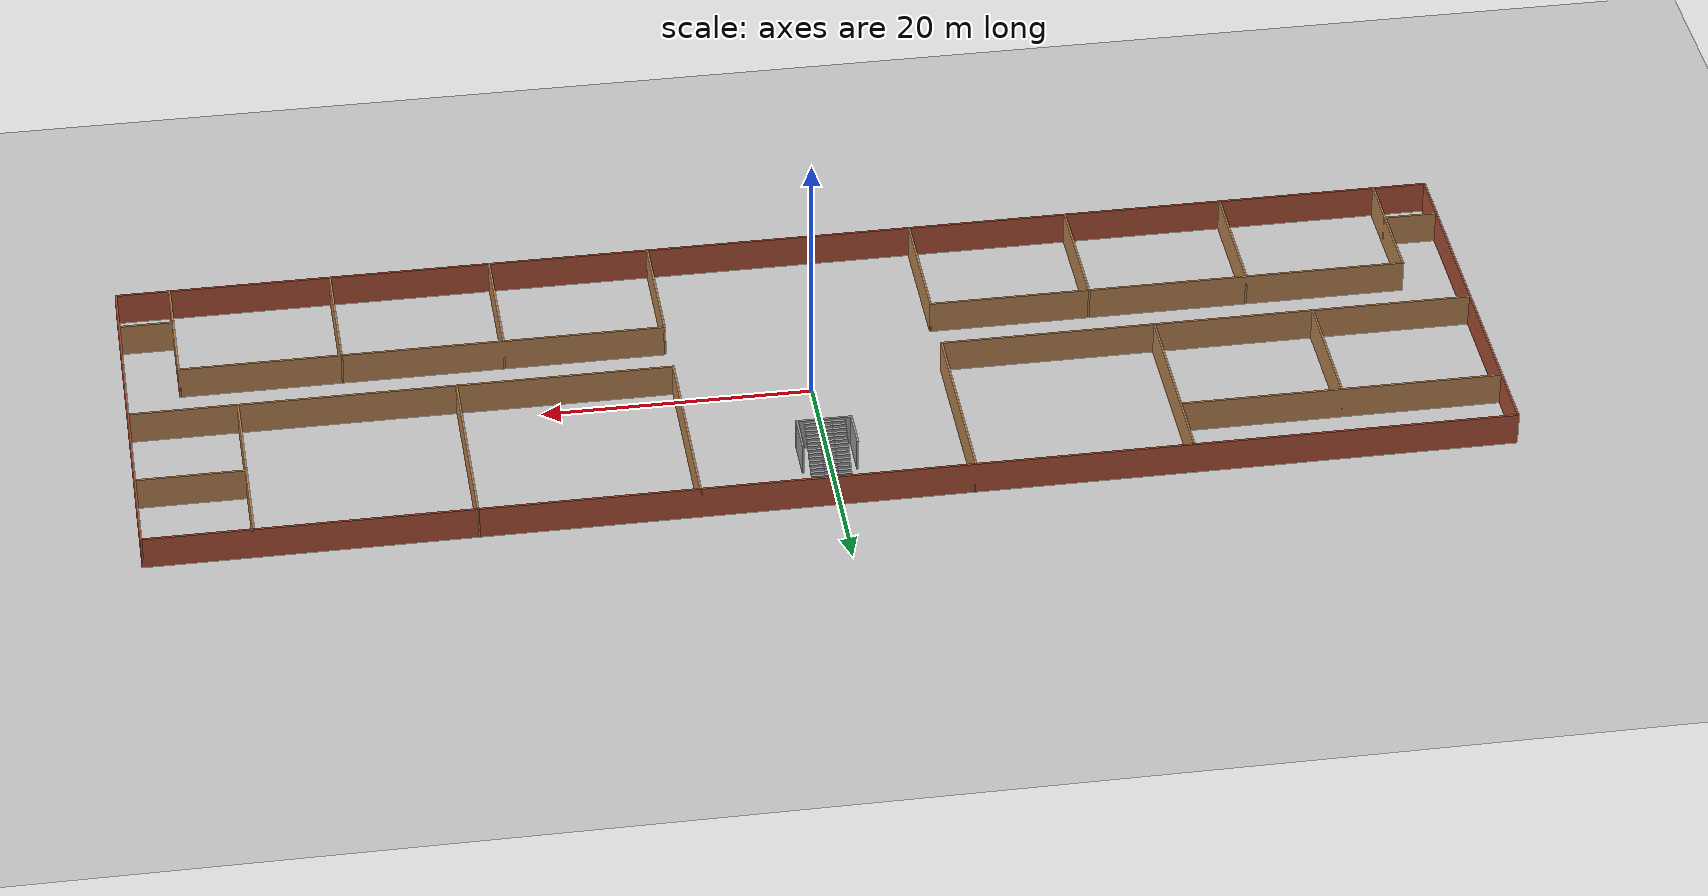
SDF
<sdf version="1.7">
 <world name="default">
  <model name="ground_plane">
   <static>1</static>
   <link name="link">
    <collision name="collision">
     <geometry><plane><normal>0 0 1</normal><size>100 100</size></plane></geometry>
     <surface>
      <contact><collide_bitmask>65535</collide_bitmask></contact>
      <friction><ode><mu>100</mu><mu2>50</mu2></ode></friction>
     </surface>
    </collision>
    <visual name="visual">
     <cast_shadows>0</cast_shadows>
     <geometry><plane><normal>0 0 1</normal><size>100 100</size></plane></geometry>
     <material>
      <script><uri>file://media/materials/scripts/gazebo.material</uri><name>Gazebo/Grey</name></script>
     </material>
    </visual>
   </link>
  </model>
  <model name="school_0910">
   <pose>0.103713 -1.21802 0 0 -0 0</pose>
   <link name="Stairs_0">
    <visual name="Stairs_0_Visual_0">
     <pose>0 11.6333 0.083333 0 -0 0</pose>
     <geometry><box><size>1 0.233333 0.166667</size></box></geometry>
     <material>
      <script><uri>file://media/materials/scripts/gazebo.material</uri><name>Gazebo/Grey</name></script>
      <ambient>1 1 1 1</ambient>
     </material>
     <meta><layer>0</layer></meta>
    </visual>
    <collision name="Stairs_0_Collision_0">
     <geometry><box><size>1 0.233333 0.166667</size></box></geometry>
     <pose>0 11.6333 0.083333 0 -0 0</pose>
    </collision>
    <visual name="Stairs_0_Visual_1">
     <pose>0 11.4 0.25 0 -0 0</pose>
     <geometry><box><size>1 0.233333 0.166667</size></box></geometry>
     <material>
      <script><uri>file://media/materials/scripts/gazebo.material</uri><name>Gazebo/Grey</name></script>
      <ambient>1 1 1 1</ambient>
     </material>
     <meta><layer>0</layer></meta>
    </visual>
    <collision name="Stairs_0_Collision_1">
     <geometry><box><size>1 0.233333 0.166667</size></box></geometry>
     <pose>0 11.4 0.25 0 -0 0</pose>
    </collision>
    <visual name="Stairs_0_Visual_2">
     <pose>0 11.1667 0.416667 0 -0 0</pose>
     <geometry><box><size>1 0.233333 0.166667</size></box></geometry>
     <material>
      <script><uri>file://media/materials/scripts/gazebo.material</uri><name>Gazebo/Grey</name></script>
      <ambient>1 1 1 1</ambient>
     </material>
     <meta><layer>0</layer></meta>
    </visual>
    <collision name="Stairs_0_Collision_2">
     <geometry><box><size>1 0.233333 0.166667</size></box></geometry>
     <pose>0 11.1667 0.416667 0 -0 0</pose>
    </collision>
    <visual name="Stairs_0_Visual_3">
     <pose>0 10.9333 0.583333 0 -0 0</pose>
     <geometry><box><size>1 0.233333 0.166667</size></box></geometry>
     <material>
      <script><uri>file://media/materials/scripts/gazebo.material</uri><name>Gazebo/Grey</name></script>
      <ambient>1 1 1 1</ambient>
     </material>
     <meta><layer>0</layer></meta>
    </visual>
    <collision name="Stairs_0_Collision_3">
     <geometry><box><size>1 0.233333 0.166667</size></box></geometry>
     <pose>0 10.9333 0.583333 0 -0 0</pose>
    </collision>
    <visual name="Stairs_0_Visual_4">
     <pose>0 10.7 0.75 0 -0 0</pose>
     <geometry><box><size>1 0.233333 0.166667</size></box></geometry>
     <material>
      <script><uri>file://media/materials/scripts/gazebo.material</uri><name>Gazebo/Grey</name></script>
      <ambient>1 1 1 1</ambient>
     </material>
     <meta><layer>0</layer></meta>
    </visual>
    <collision name="Stairs_0_Collision_4">
     <geometry><box><size>1 0.233333 0.166667</size></box></geometry>
     <pose>0 10.7 0.75 0 -0 0</pose>
    </collision>
    <visual name="Stairs_0_Visual_5">
     <pose>0 10.4667 0.916667 0 -0 0</pose>
     <geometry><box><size>1 0.233333 0.166667</size></box></geometry>
     <material>
      <script><uri>file://media/materials/scripts/gazebo.material</uri><name>Gazebo/Grey</name></script>
      <ambient>1 1 1 1</ambient>
     </material>
     <meta><layer>0</layer></meta>
    </visual>
    <collision name="Stairs_0_Collision_5">
     <geometry><box><size>1 0.233333 0.166667</size></box></geometry>
     <pose>0 10.4667 0.916667 0 -0 0</pose>
    </collision>
    <visual name="Stairs_0_Visual_6">
     <pose>0 10.2333 1.08333 0 -0 0</pose>
     <geometry><box><size>1 0.233333 0.166667</size></box></geometry>
     <material>
      <script><uri>file://media/materials/scripts/gazebo.material</uri><name>Gazebo/Grey</name></script>
      <ambient>1 1 1 1</ambient>
     </material>
     <meta><layer>0</layer></meta>
    </visual>
    <collision name="Stairs_0_Collision_6">
     <geometry><box><size>1 0.233333 0.166667</size></box></geometry>
     <pose>0 10.2333 1.08333 0 -0 0</pose>
    </collision>
    <visual name="Stairs_0_Visual_7">
     <pose>0 10 1.25 0 -0 0</pose>
     <geometry><box><size>1 0.233333 0.166667</size></box></geometry>
     <material>
      <script><uri>file://media/materials/scripts/gazebo.material</uri><name>Gazebo/Grey</name></script>
      <ambient>1 1 1 1</ambient>
     </material>
     <meta><layer>0</layer></meta>
    </visual>
    <collision name="Stairs_0_Collision_7">
     <geometry><box><size>1 0.233333 0.166667</size></box></geometry>
     <pose>0 10 1.25 0 -0 0</pose>
    </collision>
    <visual name="Stairs_0_Visual_8">
     <pose>0 9.76667 1.41667 0 -0 0</pose>
     <geometry><box><size>1 0.233333 0.166667</size></box></geometry>
     <material>
      <script><uri>file://media/materials/scripts/gazebo.material</uri><name>Gazebo/Grey</name></script>
      <ambient>1 1 1 1</ambient>
     </material>
     <meta><layer>0</layer></meta>
    </visual>
    <collision name="Stairs_0_Collision_8">
     <geometry><box><size>1 0.233333 0.166667</size></box></geometry>
     <pose>0 9.76667 1.41667 0 -0 0</pose>
    </collision>
    <visual name="Stairs_0_Visual_9">
     <pose>0 9.53333 1.58333 0 -0 0</pose>
     <geometry><box><size>1 0.233333 0.166667</size></box></geometry>
     <material>
      <script><uri>file://media/materials/scripts/gazebo.material</uri><name>Gazebo/Grey</name></script>
      <ambient>1 1 1 1</ambient>
     </material>
     <meta><layer>0</layer></meta>
    </visual>
    <collision name="Stairs_0_Collision_9">
     <geometry><box><size>1 0.233333 0.166667</size></box></geometry>
     <pose>0 9.53333 1.58333 0 -0 0</pose>
    </collision>
    <visual name="Stairs_0_Visual_10">
     <pose>0 9.3 1.75 0 -0 0</pose>
     <geometry><box><size>1 0.233333 0.166667</size></box></geometry>
     <material>
      <script><uri>file://media/materials/scripts/gazebo.material</uri><name>Gazebo/Grey</name></script>
      <ambient>1 1 1 1</ambient>
     </material>
     <meta><layer>0</layer></meta>
    </visual>
    <collision name="Stairs_0_Collision_10">
     <geometry><box><size>1 0.233333 0.166667</size></box></geometry>
     <pose>0 9.3 1.75 0 -0 0</pose>
    </collision>
    <visual name="Stairs_0_Visual_11">
     <pose>0 9.06667 1.91667 0 -0 0</pose>
     <geometry><box><size>1 0.233333 0.166667</size></box></geometry>
     <material>
      <script><uri>file://media/materials/scripts/gazebo.material</uri><name>Gazebo/Grey</name></script>
      <ambient>1 1 1 1</ambient>
     </material>
     <meta><layer>0</layer></meta>
    </visual>
    <collision name="Stairs_0_Collision_11">
     <geometry><box><size>1 0.233333 0.166667</size></box></geometry>
     <pose>0 9.06667 1.91667 0 -0 0</pose>
    </collision>
    <visual name="Stairs_0_Visual_12">
     <pose>0 8.83333 2.08333 0 -0 0</pose>
     <geometry><box><size>1 0.233333 0.166667</size></box></geometry>
     <material>
      <script><uri>file://media/materials/scripts/gazebo.material</uri><name>Gazebo/Grey</name></script>
      <ambient>1 1 1 1</ambient>
     </material>
     <meta><layer>0</layer></meta>
    </visual>
    <collision name="Stairs_0_Collision_12">
     <geometry><box><size>1 0.233333 0.166667</size></box></geometry>
     <pose>0 8.83333 2.08333 0 -0 0</pose>
    </collision>
    <visual name="Stairs_0_Visual_13">
     <pose>0 8.6 2.25 0 -0 0</pose>
     <geometry><box><size>1 0.233333 0.166667</size></box></geometry>
     <material>
      <script><uri>file://media/materials/scripts/gazebo.material</uri><name>Gazebo/Grey</name></script>
      <ambient>1 1 1 1</ambient>
     </material>
     <meta><layer>0</layer></meta>
    </visual>
    <collision name="Stairs_0_Collision_13">
     <geometry><box><size>1 0.233333 0.166667</size></box></geometry>
     <pose>0 8.6 2.25 0 -0 0</pose>
    </collision>
    <visual name="Stairs_0_Visual_14">
     <pose>0 8.36667 2.41667 0 -0 0</pose>
     <geometry><box><size>1 0.233333 0.166667</size></box></geometry>
     <material>
      <script><uri>file://media/materials/scripts/gazebo.material</uri><name>Gazebo/Grey</name></script>
      <ambient>1 1 1 1</ambient>
     </material>
     <meta><layer>0</layer></meta>
    </visual>
    <collision name="Stairs_0_Collision_14">
     <geometry><box><size>1 0.233333 0.166667</size></box></geometry>
     <pose>0 8.36667 2.41667 0 -0 0</pose>
    </collision>
   </link>
   <link name="Stairs_1">
    <visual name="Stairs_1_Visual_0">
     <pose>-1 11.6333 0.083333 0 -0 0</pose>
     <geometry><box><size>1 0.233333 0.166667</size></box></geometry>
     <material>
      <script><uri>file://media/materials/scripts/gazebo.material</uri><name>Gazebo/Grey</name></script>
      <ambient>1 1 1 1</ambient>
     </material>
     <meta><layer>0</layer></meta>
    </visual>
    <collision name="Stairs_1_Collision_0">
     <geometry><box><size>1 0.233333 0.166667</size></box></geometry>
     <pose>-1 11.6333 0.083333 0 -0 0</pose>
    </collision>
    <visual name="Stairs_1_Visual_1">
     <pose>-1 11.4 0.25 0 -0 0</pose>
     <geometry><box><size>1 0.233333 0.166667</size></box></geometry>
     <material>
      <script><uri>file://media/materials/scripts/gazebo.material</uri><name>Gazebo/Grey</name></script>
      <ambient>1 1 1 1</ambient>
     </material>
     <meta><layer>0</layer></meta>
    </visual>
    <collision name="Stairs_1_Collision_1">
     <geometry><box><size>1 0.233333 0.166667</size></box></geometry>
     <pose>-1 11.4 0.25 0 -0 0</pose>
    </collision>
    <visual name="Stairs_1_Visual_2">
     <pose>-1 11.1667 0.416667 0 -0 0</pose>
     <geometry><box><size>1 0.233333 0.166667</size></box></geometry>
     <material>
      <script><uri>file://media/materials/scripts/gazebo.material</uri><name>Gazebo/Grey</name></script>
      <ambient>1 1 1 1</ambient>
     </material>
     <meta><layer>0</layer></meta>
    </visual>
    <collision name="Stairs_1_Collision_2">
     <geometry><box><size>1 0.233333 0.166667</size></box></geometry>
     <pose>-1 11.1667 0.416667 0 -0 0</pose>
    </collision>
    <visual name="Stairs_1_Visual_3">
     <pose>-1 10.9333 0.583333 0 -0 0</pose>
     <geometry><box><size>1 0.233333 0.166667</size></box></geometry>
     <material>
      <script><uri>file://media/materials/scripts/gazebo.material</uri><name>Gazebo/Grey</name></script>
      <ambient>1 1 1 1</ambient>
     </material>
     <meta><layer>0</layer></meta>
    </visual>
    <collision name="Stairs_1_Collision_3">
     <geometry><box><size>1 0.233333 0.166667</size></box></geometry>
     <pose>-1 10.9333 0.583333 0 -0 0</pose>
    </collision>
    <visual name="Stairs_1_Visual_4">
     <pose>-1 10.7 0.75 0 -0 0</pose>
     <geometry><box><size>1 0.233333 0.166667</size></box></geometry>
     <material>
      <script><uri>file://media/materials/scripts/gazebo.material</uri><name>Gazebo/Grey</name></script>
      <ambient>1 1 1 1</ambient>
     </material>
     <meta><layer>0</layer></meta>
    </visual>
    <collision name="Stairs_1_Collision_4">
     <geometry><box><size>1 0.233333 0.166667</size></box></geometry>
     <pose>-1 10.7 0.75 0 -0 0</pose>
    </collision>
    <visual name="Stairs_1_Visual_5">
     <pose>-1 10.4667 0.916667 0 -0 0</pose>
     <geometry><box><size>1 0.233333 0.166667</size></box></geometry>
     <material>
      <script><uri>file://media/materials/scripts/gazebo.material</uri><name>Gazebo/Grey</name></script>
      <ambient>1 1 1 1</ambient>
     </material>
     <meta><layer>0</layer></meta>
    </visual>
    <collision name="Stairs_1_Collision_5">
     <geometry><box><size>1 0.233333 0.166667</size></box></geometry>
     <pose>-1 10.4667 0.916667 0 -0 0</pose>
    </collision>
    <visual name="Stairs_1_Visual_6">
     <pose>-1 10.2333 1.08333 0 -0 0</pose>
     <geometry><box><size>1 0.233333 0.166667</size></box></geometry>
     <material>
      <script><uri>file://media/materials/scripts/gazebo.material</uri><name>Gazebo/Grey</name></script>
      <ambient>1 1 1 1</ambient>
     </material>
     <meta><layer>0</layer></meta>
    </visual>
    <collision name="Stairs_1_Collision_6">
     <geometry><box><size>1 0.233333 0.166667</size></box></geometry>
     <pose>-1 10.2333 1.08333 0 -0 0</pose>
    </collision>
    <visual name="Stairs_1_Visual_7">
     <pose>-1 10 1.25 0 -0 0</pose>
     <geometry><box><size>1 0.233333 0.166667</size></box></geometry>
     <material>
      <script><uri>file://media/materials/scripts/gazebo.material</uri><name>Gazebo/Grey</name></script>
      <ambient>1 1 1 1</ambient>
     </material>
     <meta><layer>0</layer></meta>
    </visual>
    <collision name="Stairs_1_Collision_7">
     <geometry><box><size>1 0.233333 0.166667</size></box></geometry>
     <pose>-1 10 1.25 0 -0 0</pose>
    </collision>
    <visual name="Stairs_1_Visual_8">
     <pose>-1 9.76667 1.41667 0 -0 0</pose>
     <geometry><box><size>1 0.233333 0.166667</size></box></geometry>
     <material>
      <script><uri>file://media/materials/scripts/gazebo.material</uri><name>Gazebo/Grey</name></script>
      <ambient>1 1 1 1</ambient>
     </material>
     <meta><layer>0</layer></meta>
    </visual>
    <collision name="Stairs_1_Collision_8">
     <geometry><box><size>1 0.233333 0.166667</size></box></geometry>
     <pose>-1 9.76667 1.41667 0 -0 0</pose>
    </collision>
    <visual name="Stairs_1_Visual_9">
     <pose>-1 9.53333 1.58333 0 -0 0</pose>
     <geometry><box><size>1 0.233333 0.166667</size></box></geometry>
     <material>
      <script><uri>file://media/materials/scripts/gazebo.material</uri><name>Gazebo/Grey</name></script>
      <ambient>1 1 1 1</ambient>
     </material>
     <meta><layer>0</layer></meta>
    </visual>
    <collision name="Stairs_1_Collision_9">
     <geometry><box><size>1 0.233333 0.166667</size></box></geometry>
     <pose>-1 9.53333 1.58333 0 -0 0</pose>
    </collision>
    <visual name="Stairs_1_Visual_10">
     <pose>-1 9.3 1.75 0 -0 0</pose>
     <geometry><box><size>1 0.233333 0.166667</size></box></geometry>
     <material>
      <script><uri>file://media/materials/scripts/gazebo.material</uri><name>Gazebo/Grey</name></script>
      <ambient>1 1 1 1</ambient>
     </material>
     <meta><layer>0</layer></meta>
    </visual>
    <collision name="Stairs_1_Collision_10">
     <geometry><box><size>1 0.233333 0.166667</size></box></geometry>
     <pose>-1 9.3 1.75 0 -0 0</pose>
    </collision>
    <visual name="Stairs_1_Visual_11">
     <pose>-1 9.06667 1.91667 0 -0 0</pose>
     <geometry><box><size>1 0.233333 0.166667</size></box></geometry>
     <material>
      <script><uri>file://media/materials/scripts/gazebo.material</uri><name>Gazebo/Grey</name></script>
      <ambient>1 1 1 1</ambient>
     </material>
     <meta><layer>0</layer></meta>
    </visual>
    <collision name="Stairs_1_Collision_11">
     <geometry><box><size>1 0.233333 0.166667</size></box></geometry>
     <pose>-1 9.06667 1.91667 0 -0 0</pose>
    </collision>
    <visual name="Stairs_1_Visual_12">
     <pose>-1 8.83333 2.08333 0 -0 0</pose>
     <geometry><box><size>1 0.233333 0.166667</size></box></geometry>
     <material>
      <script><uri>file://media/materials/scripts/gazebo.material</uri><name>Gazebo/Grey</name></script>
      <ambient>1 1 1 1</ambient>
     </material>
     <meta><layer>0</layer></meta>
    </visual>
    <collision name="Stairs_1_Collision_12">
     <geometry><box><size>1 0.233333 0.166667</size></box></geometry>
     <pose>-1 8.83333 2.08333 0 -0 0</pose>
    </collision>
    <visual name="Stairs_1_Visual_13">
     <pose>-1 8.6 2.25 0 -0 0</pose>
     <geometry><box><size>1 0.233333 0.166667</size></box></geometry>
     <material>
      <script><uri>file://media/materials/scripts/gazebo.material</uri><name>Gazebo/Grey</name></script>
      <ambient>1 1 1 1</ambient>
     </material>
     <meta><layer>0</layer></meta>
    </visual>
    <collision name="Stairs_1_Collision_13">
     <geometry><box><size>1 0.233333 0.166667</size></box></geometry>
     <pose>-1 8.6 2.25 0 -0 0</pose>
    </collision>
    <visual name="Stairs_1_Visual_14">
     <pose>-1 8.36667 2.41667 0 -0 0</pose>
     <geometry><box><size>1 0.233333 0.166667</size></box></geometry>
     <material>
      <script><uri>file://media/materials/scripts/gazebo.material</uri><name>Gazebo/Grey</name></script>
      <ambient>1 1 1 1</ambient>
     </material>
     <meta><layer>0</layer></meta>
    </visual>
    <collision name="Stairs_1_Collision_14">
     <geometry><box><size>1 0.233333 0.166667</size></box></geometry>
     <pose>-1 8.36667 2.41667 0 -0 0</pose>
    </collision>
   </link>
   <link name="Stairs_2">
    <visual name="Stairs_2_Visual_0">
     <pose>1 11.6333 0.083333 0 -0 0</pose>
     <geometry><box><size>1 0.233333 0.166667</size></box></geometry>
     <material>
      <script><uri>file://media/materials/scripts/gazebo.material</uri><name>Gazebo/Grey</name></script>
      <ambient>1 1 1 1</ambient>
     </material>
     <meta><layer>0</layer></meta>
    </visual>
    <collision name="Stairs_2_Collision_0">
     <geometry><box><size>1 0.233333 0.166667</size></box></geometry>
     <pose>1 11.6333 0.083333 0 -0 0</pose>
    </collision>
    <visual name="Stairs_2_Visual_1">
     <pose>1 11.4 0.25 0 -0 0</pose>
     <geometry><box><size>1 0.233333 0.166667</size></box></geometry>
     <material>
      <script><uri>file://media/materials/scripts/gazebo.material</uri><name>Gazebo/Grey</name></script>
      <ambient>1 1 1 1</ambient>
     </material>
     <meta><layer>0</layer></meta>
    </visual>
    <collision name="Stairs_2_Collision_1">
     <geometry><box><size>1 0.233333 0.166667</size></box></geometry>
     <pose>1 11.4 0.25 0 -0 0</pose>
    </collision>
    <visual name="Stairs_2_Visual_2">
     <pose>1 11.1667 0.416667 0 -0 0</pose>
     <geometry><box><size>1 0.233333 0.166667</size></box></geometry>
     <material>
      <script><uri>file://media/materials/scripts/gazebo.material</uri><name>Gazebo/Grey</name></script>
      <ambient>1 1 1 1</ambient>
     </material>
     <meta><layer>0</layer></meta>
    </visual>
    <collision name="Stairs_2_Collision_2">
     <geometry><box><size>1 0.233333 0.166667</size></box></geometry>
     <pose>1 11.1667 0.416667 0 -0 0</pose>
    </collision>
    <visual name="Stairs_2_Visual_3">
     <pose>1 10.9333 0.583333 0 -0 0</pose>
     <geometry><box><size>1 0.233333 0.166667</size></box></geometry>
     <material>
      <script><uri>file://media/materials/scripts/gazebo.material</uri><name>Gazebo/Grey</name></script>
      <ambient>1 1 1 1</ambient>
     </material>
     <meta><layer>0</layer></meta>
    </visual>
    <collision name="Stairs_2_Collision_3">
     <geometry><box><size>1 0.233333 0.166667</size></box></geometry>
     <pose>1 10.9333 0.583333 0 -0 0</pose>
    </collision>
    <visual name="Stairs_2_Visual_4">
     <pose>1 10.7 0.75 0 -0 0</pose>
     <geometry><box><size>1 0.233333 0.166667</size></box></geometry>
     <material>
      <script><uri>file://media/materials/scripts/gazebo.material</uri><name>Gazebo/Grey</name></script>
      <ambient>1 1 1 1</ambient>
     </material>
     <meta><layer>0</layer></meta>
    </visual>
    <collision name="Stairs_2_Collision_4">
     <geometry><box><size>1 0.233333 0.166667</size></box></geometry>
     <pose>1 10.7 0.75 0 -0 0</pose>
    </collision>
    <visual name="Stairs_2_Visual_5">
     <pose>1 10.4667 0.916667 0 -0 0</pose>
     <geometry><box><size>1 0.233333 0.166667</size></box></geometry>
     <material>
      <script><uri>file://media/materials/scripts/gazebo.material</uri><name>Gazebo/Grey</name></script>
      <ambient>1 1 1 1</ambient>
     </material>
     <meta><layer>0</layer></meta>
    </visual>
    <collision name="Stairs_2_Collision_5">
     <geometry><box><size>1 0.233333 0.166667</size></box></geometry>
     <pose>1 10.4667 0.916667 0 -0 0</pose>
    </collision>
    <visual name="Stairs_2_Visual_6">
     <pose>1 10.2333 1.08333 0 -0 0</pose>
     <geometry><box><size>1 0.233333 0.166667</size></box></geometry>
     <material>
      <script><uri>file://media/materials/scripts/gazebo.material</uri><name>Gazebo/Grey</name></script>
      <ambient>1 1 1 1</ambient>
     </material>
     <meta><layer>0</layer></meta>
    </visual>
    <collision name="Stairs_2_Collision_6">
     <geometry><box><size>1 0.233333 0.166667</size></box></geometry>
     <pose>1 10.2333 1.08333 0 -0 0</pose>
    </collision>
    <visual name="Stairs_2_Visual_7">
     <pose>1 10 1.25 0 -0 0</pose>
     <geometry><box><size>1 0.233333 0.166667</size></box></geometry>
     <material>
      <script><uri>file://media/materials/scripts/gazebo.material</uri><name>Gazebo/Grey</name></script>
      <ambient>1 1 1 1</ambient>
     </material>
     <meta><layer>0</layer></meta>
    </visual>
    <collision name="Stairs_2_Collision_7">
     <geometry><box><size>1 0.233333 0.166667</size></box></geometry>
     <pose>1 10 1.25 0 -0 0</pose>
    </collision>
    <visual name="Stairs_2_Visual_8">
     <pose>1 9.76667 1.41667 0 -0 0</pose>
     <geometry><box><size>1 0.233333 0.166667</size></box></geometry>
     <material>
      <script><uri>file://media/materials/scripts/gazebo.material</uri><name>Gazebo/Grey</name></script>
      <ambient>1 1 1 1</ambient>
     </material>
     <meta><layer>0</layer></meta>
    </visual>
    <collision name="Stairs_2_Collision_8">
     <geometry><box><size>1 0.233333 0.166667</size></box></geometry>
     <pose>1 9.76667 1.41667 0 -0 0</pose>
    </collision>
    <visual name="Stairs_2_Visual_9">
     <pose>1 9.53333 1.58333 0 -0 0</pose>
     <geometry><box><size>1 0.233333 0.166667</size></box></geometry>
     <material>
      <script><uri>file://media/materials/scripts/gazebo.material</uri><name>Gazebo/Grey</name></script>
      <ambient>1 1 1 1</ambient>
     </material>
     <meta><layer>0</layer></meta>
    </visual>
    <collision name="Stairs_2_Collision_9">
     <geometry><box><size>1 0.233333 0.166667</size></box></geometry>
     <pose>1 9.53333 1.58333 0 -0 0</pose>
    </collision>
    <visual name="Stairs_2_Visual_10">
     <pose>1 9.3 1.75 0 -0 0</pose>
     <geometry><box><size>1 0.233333 0.166667</size></box></geometry>
     <material>
      <script><uri>file://media/materials/scripts/gazebo.material</uri><name>Gazebo/Grey</name></script>
      <ambient>1 1 1 1</ambient>
     </material>
     <meta><layer>0</layer></meta>
    </visual>
    <collision name="Stairs_2_Collision_10">
     <geometry><box><size>1 0.233333 0.166667</size></box></geometry>
     <pose>1 9.3 1.75 0 -0 0</pose>
    </collision>
    <visual name="Stairs_2_Visual_11">
     <pose>1 9.06667 1.91667 0 -0 0</pose>
     <geometry><box><size>1 0.233333 0.166667</size></box></geometry>
     <material>
      <script><uri>file://media/materials/scripts/gazebo.material</uri><name>Gazebo/Grey</name></script>
      <ambient>1 1 1 1</ambient>
     </material>
     <meta><layer>0</layer></meta>
    </visual>
    <collision name="Stairs_2_Collision_11">
     <geometry><box><size>1 0.233333 0.166667</size></box></geometry>
     <pose>1 9.06667 1.91667 0 -0 0</pose>
    </collision>
    <visual name="Stairs_2_Visual_12">
     <pose>1 8.83333 2.08333 0 -0 0</pose>
     <geometry><box><size>1 0.233333 0.166667</size></box></geometry>
     <material>
      <script><uri>file://media/materials/scripts/gazebo.material</uri><name>Gazebo/Grey</name></script>
      <ambient>1 1 1 1</ambient>
     </material>
     <meta><layer>0</layer></meta>
    </visual>
    <collision name="Stairs_2_Collision_12">
     <geometry><box><size>1 0.233333 0.166667</size></box></geometry>
     <pose>1 8.83333 2.08333 0 -0 0</pose>
    </collision>
    <visual name="Stairs_2_Visual_13">
     <pose>1 8.6 2.25 0 -0 0</pose>
     <geometry><box><size>1 0.233333 0.166667</size></box></geometry>
     <material>
      <script><uri>file://media/materials/scripts/gazebo.material</uri><name>Gazebo/Grey</name></script>
      <ambient>1 1 1 1</ambient>
     </material>
     <meta><layer>0</layer></meta>
    </visual>
    <collision name="Stairs_2_Collision_13">
     <geometry><box><size>1 0.233333 0.166667</size></box></geometry>
     <pose>1 8.6 2.25 0 -0 0</pose>
    </collision>
    <visual name="Stairs_2_Visual_14">
     <pose>1 8.36667 2.41667 0 -0 0</pose>
     <geometry><box><size>1 0.233333 0.166667</size></box></geometry>
     <material>
      <script><uri>file://media/materials/scripts/gazebo.material</uri><name>Gazebo/Grey</name></script>
      <ambient>1 1 1 1</ambient>
     </material>
     <meta><layer>0</layer></meta>
    </visual>
    <collision name="Stairs_2_Collision_14">
     <geometry><box><size>1 0.233333 0.166667</size></box></geometry>
     <pose>1 8.36667 2.41667 0 -0 0</pose>
    </collision>
   </link>
   <link name="Wall_15">
    <collision name="Wall_15_Collision">
     <geometry><box><size>30.15 0.15 2.5</size></box></geometry>
     <pose>0 0 1.25 0 -0 0</pose>
    </collision>
    <visual name="Wall_15_Visual">
     <pose>0 0 1.25 0 -0 0</pose>
     <geometry><box><size>30.15 0.15 2.5</size></box></geometry>
     <material>
      <script><uri>file://media/materials/scripts/gazebo.material</uri><name>Gazebo/Bricks</name></script>
      <ambient>1 1 1 1</ambient>
     </material>
     <meta><layer>0</layer></meta>
    </visual>
    <pose>-50 0 0 0 -0 -1.5708</pose>
   </link>
   <link name="Wall_17">
    <collision name="Wall_17_Collision">
     <geometry><box><size>100.15 0.15 2.5</size></box></geometry>
     <pose>0 0 1.25 0 -0 0</pose>
    </collision>
    <visual name="Wall_17_Visual">
     <pose>0 0 1.25 0 -0 0</pose>
     <geometry><box><size>100.15 0.15 2.5</size></box></geometry>
     <material>
      <script><uri>file://media/materials/scripts/gazebo.material</uri><name>Gazebo/Bricks</name></script>
      <ambient>1 1 1 1</ambient>
     </material>
     <meta><layer>0</layer></meta>
    </visual>
    <pose>0 -15 0 0 -0 0</pose>
   </link>
   <link name="Wall_19">
    <collision name="Wall_19_Collision">
     <geometry><box><size>30.15 0.15 2.5</size></box></geometry>
     <pose>0 0 1.25 0 -0 0</pose>
    </collision>
    <visual name="Wall_19_Visual">
     <pose>0 0 1.25 0 -0 0</pose>
     <geometry><box><size>30.15 0.15 2.5</size></box></geometry>
     <material>
      <script><uri>file://media/materials/scripts/gazebo.material</uri><name>Gazebo/Bricks</name></script>
      <ambient>1 1 1 1</ambient>
     </material>
     <meta><layer>0</layer></meta>
    </visual>
    <pose>50 0 0 0 -0 -1.5708</pose>
   </link>
   <link name="Wall_21">
    <collision name="Wall_21_Collision">
     <geometry><box><size>24.15 0.15 2.5</size></box></geometry>
     <pose>0 0 1.25 0 -0 0</pose>
    </collision>
    <visual name="Wall_21_Visual">
     <pose>0 0 1.25 0 -0 0</pose>
     <geometry><box><size>24.15 0.15 2.5</size></box></geometry>
     <material>
      <script><uri>file://media/materials/scripts/gazebo.material</uri><name>Gazebo/Wood</name></script>
      <ambient>1 1 1 1</ambient>
     </material>
     <meta><layer>0</layer></meta>
    </visual>
    <pose>-38 10 0 0 -0 0</pose>
   </link>
   <link name="Wall_23">
    <collision name="Wall_23_Collision">
     <geometry><box><size>10.15 0.15 2.5</size></box></geometry>
     <pose>0 0 1.25 0 -0 0</pose>
    </collision>
    <visual name="Wall_23_Visual">
     <pose>0 0 1.25 0 -0 0</pose>
     <geometry><box><size>10.15 0.15 2.5</size></box></geometry>
     <material>
      <script><uri>file://media/materials/scripts/gazebo.material</uri><name>Gazebo/Wood</name></script>
      <ambient>1 1 1 1</ambient>
     </material>
     <meta><layer>0</layer></meta>
    </visual>
    <pose>-38 5 0 0 -0 -1.5708</pose>
   </link>
   <link name="Wall_25">
    <collision name="Wall_25_Collision">
     <geometry><box><size>15.15 0.15 2.5</size></box></geometry>
     <pose>0 0 1.25 0 -0 0</pose>
    </collision>
    <visual name="Wall_25_Visual">
     <pose>0 0 1.25 0 -0 0</pose>
     <geometry><box><size>15.15 0.15 2.5</size></box></geometry>
     <material>
      <script><uri>file://media/materials/scripts/gazebo.material</uri><name>Gazebo/Wood</name></script>
      <ambient>1 1 1 1</ambient>
     </material>
     <meta><layer>0</layer></meta>
    </visual>
    <pose>-26 7.5 0 0 -0 -1.5708</pose>
   </link>
   <link name="Wall_27">
    <collision name="Wall_27_Collision">
     <geometry><box><size>40.15 0.15 2.5</size></box></geometry>
     <pose>0 0 1.25 0 -0 0</pose>
    </collision>
    <visual name="Wall_27_Visual">
     <pose>0 0 1.25 0 -0 0</pose>
     <geometry><box><size>40.15 0.15 2.5</size></box></geometry>
     <material>
      <script><uri>file://media/materials/scripts/gazebo.material</uri><name>Gazebo/Wood</name></script>
      <ambient>1 1 1 1</ambient>
     </material>
     <meta><layer>0</layer></meta>
    </visual>
    <pose>-30 0 0 0 -0 0</pose>
   </link>
   <link name="Wall_29">
    <collision name="Wall_29_Collision">
     <geometry><box><size>15.15 0.15 2.5</size></box></geometry>
     <pose>0 0 1.25 0 -0 0</pose>
    </collision>
    <visual name="Wall_29_Visual">
     <pose>0 0 1.25 0 -0 0</pose>
     <geometry><box><size>15.15 0.15 2.5</size></box></geometry>
     <material>
      <script><uri>file://media/materials/scripts/gazebo.material</uri><name>Gazebo/Wood</name></script>
      <ambient>1 1 1 1</ambient>
     </material>
     <meta><layer>0</layer></meta>
    </visual>
    <pose>-10 7.5 0 0 -0 -1.5708</pose>
   </link>
   <link name="Wall_32">
    <collision name="Wall_32_Collision">
     <geometry><box><size>4.15 0.15 2.5</size></box></geometry>
     <pose>0 0 1.25 0 -0 0</pose>
    </collision>
    <visual name="Wall_32_Visual">
     <pose>0 0 1.25 0 -0 0</pose>
     <geometry><box><size>4.15 0.15 2.5</size></box></geometry>
     <material>
      <script><uri>file://media/materials/scripts/gazebo.material</uri><name>Gazebo/Wood</name></script>
      <ambient>1 1 1 1</ambient>
     </material>
     <meta><layer>0</layer></meta>
    </visual>
    <pose>-48 -11 0 0 -0 0</pose>
   </link>
   <link name="Wall_35">
    <collision name="Wall_35_Collision">
     <geometry><box><size>10.15 0.15 2.5</size></box></geometry>
     <pose>0 0 1.25 0 -0 0</pose>
    </collision>
    <visual name="Wall_35_Visual">
     <pose>0 0 1.25 0 -0 0</pose>
     <geometry><box><size>10.15 0.15 2.5</size></box></geometry>
     <material>
      <script><uri>file://media/materials/scripts/gazebo.material</uri><name>Gazebo/Wood</name></script>
      <ambient>1 1 1 1</ambient>
     </material>
     <meta><layer>0</layer></meta>
    </visual>
    <pose>-46 -10 0 0 -0 -1.5708</pose>
   </link>
   <link name="Wall_37">
    <collision name="Wall_37_Collision">
     <geometry><box><size>36.15 0.15 2.5</size></box></geometry>
     <pose>0 0 1.25 0 -0 0</pose>
    </collision>
    <visual name="Wall_37_Visual">
     <pose>0 0 1.25 0 -0 0</pose>
     <geometry><box><size>36.15 0.15 2.5</size></box></geometry>
     <material>
      <script><uri>file://media/materials/scripts/gazebo.material</uri><name>Gazebo/Wood</name></script>
      <ambient>1 1 1 1</ambient>
     </material>
     <meta><layer>0</layer></meta>
    </visual>
    <pose>-28 -5 0 0 -0 0</pose>
   </link>
   <link name="Wall_39">
    <collision name="Wall_39_Collision">
     <geometry><box><size>10.15 0.15 2.5</size></box></geometry>
     <pose>0 0 1.25 0 -0 0</pose>
    </collision>
    <visual name="Wall_39_Visual">
     <pose>0 0 1.25 0 -0 0</pose>
     <geometry><box><size>10.15 0.15 2.5</size></box></geometry>
     <material>
      <script><uri>file://media/materials/scripts/gazebo.material</uri><name>Gazebo/Wood</name></script>
      <ambient>1 1 1 1</ambient>
     </material>
     <meta><layer>0</layer></meta>
    </visual>
    <pose>-34 -10 0 0 -0 -1.5708</pose>
   </link>
   <link name="Wall_41">
    <collision name="Wall_41_Collision">
     <geometry><box><size>10.15 0.15 2.5</size></box></geometry>
     <pose>0 0 1.25 0 -0 0</pose>
    </collision>
    <visual name="Wall_41_Visual">
     <pose>0 0 1.25 0 -0 0</pose>
     <geometry><box><size>10.15 0.15 2.5</size></box></geometry>
     <material>
      <script><uri>file://media/materials/scripts/gazebo.material</uri><name>Gazebo/Wood</name></script>
      <ambient>1 1 1 1</ambient>
     </material>
     <meta><layer>0</layer></meta>
    </visual>
    <pose>-22 -10 0 0 -0 -1.5708</pose>
   </link>
   <link name="Wall_43">
    <collision name="Wall_43_Collision">
     <geometry><box><size>10.15 0.15 2.5</size></box></geometry>
     <pose>0 0 1.25 0 -0 0</pose>
    </collision>
    <visual name="Wall_43_Visual">
     <pose>0 0 1.25 0 -0 0</pose>
     <geometry><box><size>10.15 0.15 2.5</size></box></geometry>
     <material>
      <script><uri>file://media/materials/scripts/gazebo.material</uri><name>Gazebo/Wood</name></script>
      <ambient>1 1 1 1</ambient>
     </material>
     <meta><layer>0</layer></meta>
    </visual>
    <pose>-10 -10 0 0 -0 -1.5708</pose>
   </link>
   <link name="Wall_45">
    <collision name="Wall_45_Collision">
     <geometry><box><size>15.15 0.15 2.5</size></box></geometry>
     <pose>0 0 1.25 0 -0 0</pose>
    </collision>
    <visual name="Wall_45_Visual">
     <pose>0 0 1.25 0 -0 0</pose>
     <geometry><box><size>15.15 0.15 2.5</size></box></geometry>
     <material>
      <script><uri>file://media/materials/scripts/gazebo.material</uri><name>Gazebo/Wood</name></script>
      <ambient>1 1 1 1</ambient>
     </material>
     <meta><layer>0</layer></meta>
    </visual>
    <pose>26 7.5 0 0 -0 -1.5708</pose>
   </link>
   <link name="Wall_47">
    <collision name="Wall_47_Collision">
     <geometry><box><size>15.15 0.15 2.5</size></box></geometry>
     <pose>0 0 1.25 0 -0 0</pose>
    </collision>
    <visual name="Wall_47_Visual">
     <pose>0 0 1.25 0 -0 0</pose>
     <geometry><box><size>15.15 0.15 2.5</size></box></geometry>
     <material>
      <script><uri>file://media/materials/scripts/gazebo.material</uri><name>Gazebo/Wood</name></script>
      <ambient>1 1 1 1</ambient>
     </material>
     <meta><layer>0</layer></meta>
    </visual>
    <pose>42 7.5 0 0 -0 -1.5708</pose>
   </link>
   <link name="Wall_49">
    <collision name="Wall_49_Collision">
     <geometry><box><size>8.15 0.15 2.5</size></box></geometry>
     <pose>0 0 1.25 0 -0 0</pose>
    </collision>
    <visual name="Wall_49_Visual">
     <pose>0 0 1.25 0 -0 0</pose>
     <geometry><box><size>8.15 0.15 2.5</size></box></geometry>
     <material>
      <script><uri>file://media/materials/scripts/gazebo.material</uri><name>Gazebo/Wood</name></script>
      <ambient>1 1 1 1</ambient>
     </material>
     <meta><layer>0</layer></meta>
    </visual>
    <pose>46 8 0 0 -0 0</pose>
   </link>
   <link name="Wall_51">
    <collision name="Wall_51_Collision">
     <geometry><box><size>15.15 0.15 2.5</size></box></geometry>
     <pose>0 0 1.25 0 -0 0</pose>
    </collision>
    <visual name="Wall_51_Visual">
     <pose>0 0 1.25 0 -0 0</pose>
     <geometry><box><size>15.15 0.15 2.5</size></box></geometry>
     <material>
      <script><uri>file://media/materials/scripts/gazebo.material</uri><name>Gazebo/Wood</name></script>
      <ambient>1 1 1 1</ambient>
     </material>
     <meta><layer>0</layer></meta>
    </visual>
    <pose>10 7.5 0 0 -0 -1.5708</pose>
   </link>
   <link name="Wall_53">
    <collision name="Wall_53_Collision">
     <geometry><box><size>40.15 0.15 2.5</size></box></geometry>
     <pose>0 0 1.25 0 -0 0</pose>
    </collision>
    <visual name="Wall_53_Visual">
     <pose>0 0 1.25 0 -0 0</pose>
     <geometry><box><size>40.15 0.15 2.5</size></box></geometry>
     <material>
      <script><uri>file://media/materials/scripts/gazebo.material</uri><name>Gazebo/Wood</name></script>
      <ambient>1 1 1 1</ambient>
     </material>
     <meta><layer>0</layer></meta>
    </visual>
    <pose>30 0 0 0 -0 0</pose>
   </link>
   <link name="Wall_55">
    <collision name="Wall_55_Collision">
     <geometry><box><size>36.15 0.15 2.5</size></box></geometry>
     <pose>0 0 1.25 0 -0 0</pose>
    </collision>
    <visual name="Wall_55_Visual">
     <pose>0 0 1.25 0 -0 0</pose>
     <geometry><box><size>36.15 0.15 2.5</size></box></geometry>
     <material>
      <script><uri>file://media/materials/scripts/gazebo.material</uri><name>Gazebo/Wood</name></script>
      <ambient>1 1 1 1</ambient>
     </material>
     <meta><layer>0</layer></meta>
    </visual>
    <pose>28 -5 0 0 -0 0</pose>
   </link>
   <link name="Wall_57">
    <collision name="Wall_57_Collision">
     <geometry><box><size>10.15 0.15 2.5</size></box></geometry>
     <pose>0 0 1.25 0 -0 0</pose>
    </collision>
    <visual name="Wall_57_Visual">
     <pose>0 0 1.25 0 -0 0</pose>
     <geometry><box><size>10.15 0.15 2.5</size></box></geometry>
     <material>
      <script><uri>file://media/materials/scripts/gazebo.material</uri><name>Gazebo/Wood</name></script>
      <ambient>1 1 1 1</ambient>
     </material>
     <meta><layer>0</layer></meta>
    </visual>
    <pose>10 -10 0 0 -0 -1.5708</pose>
   </link>
   <link name="Wall_59">
    <collision name="Wall_59_Collision">
     <geometry><box><size>10.15 0.15 2.5</size></box></geometry>
     <pose>0 0 1.25 0 -0 0</pose>
    </collision>
    <visual name="Wall_59_Visual">
     <pose>0 0 1.25 0 -0 0</pose>
     <geometry><box><size>10.15 0.15 2.5</size></box></geometry>
     <material>
      <script><uri>file://media/materials/scripts/gazebo.material</uri><name>Gazebo/Wood</name></script>
      <ambient>1 1 1 1</ambient>
     </material>
     <meta><layer>0</layer></meta>
    </visual>
    <pose>22 -10 0 0 -0 -1.5708</pose>
   </link>
   <link name="Wall_61">
    <collision name="Wall_61_Collision">
     <geometry><box><size>10.15 0.15 2.5</size></box></geometry>
     <pose>0 0 1.25 0 -0 0</pose>
    </collision>
    <visual name="Wall_61_Visual">
     <pose>0 0 1.25 0 -0 0</pose>
     <geometry><box><size>10.15 0.15 2.5</size></box></geometry>
     <material>
      <script><uri>file://media/materials/scripts/gazebo.material</uri><name>Gazebo/Wood</name></script>
      <ambient>1 1 1 1</ambient>
     </material>
     <meta><layer>0</layer></meta>
    </visual>
    <pose>34 -10 0 0 -0 -1.5708</pose>
   </link>
   <link name="Wall_63">
    <collision name="Wall_63_Collision">
     <geometry><box><size>10.15 0.15 2.5</size></box></geometry>
     <pose>0 0 1.25 0 -0 0</pose>
    </collision>
    <visual name="Wall_63_Visual">
     <pose>0 0 1.25 0 -0 0</pose>
     <geometry><box><size>10.15 0.15 2.5</size></box></geometry>
     <material>
      <script><uri>file://media/materials/scripts/gazebo.material</uri><name>Gazebo/Wood</name></script>
      <ambient>1 1 1 1</ambient>
     </material>
     <meta><layer>0</layer></meta>
    </visual>
    <pose>46 -10 0 0 -0 -1.5708</pose>
   </link>
   <link name="Wall_65">
    <collision name="Wall_65_Collision">
     <geometry><box><size>4.15 0.15 2.5</size></box></geometry>
     <pose>0 0 1.25 0 -0 0</pose>
    </collision>
    <visual name="Wall_65_Visual">
     <pose>0 0 1.25 0 -0 0</pose>
     <geometry><box><size>4.15 0.15 2.5</size></box></geometry>
     <material>
      <script><uri>file://media/materials/scripts/gazebo.material</uri><name>Gazebo/Wood</name></script>
      <ambient>1 1 1 1</ambient>
     </material>
     <meta><layer>0</layer></meta>
    </visual>
    <pose>48 -11 0 0 -0 0</pose>
   </link>
   <link name="Wall_67">
    <collision name="Wall_67_Collision">
     <geometry><box><size>4.15 0.15 2.5</size></box></geometry>
     <pose>0 0 1.25 0 -0 0</pose>
    </collision>
    <visual name="Wall_67_Visual">
     <pose>0 0 1.25 0 -0 0</pose>
     <geometry><box><size>4.15 0.15 2.5</size></box></geometry>
     <material>
      <script><uri>file://media/materials/scripts/gazebo.material</uri><name>Gazebo/Grey</name></script>
      <ambient>1 1 1 1</ambient>
     </material>
     <meta><layer>0</layer></meta>
    </visual>
    <pose>0 8 0 0 -0 0</pose>
   </link>
   <link name="Wall_69">
    <collision name="Wall_69_Collision">
     <geometry><box><size>3.15 0.15 2.5</size></box></geometry>
     <pose>0 0 1.25 0 -0 0</pose>
    </collision>
    <visual name="Wall_69_Visual">
     <pose>0 0 1.25 0 -0 0</pose>
     <geometry><box><size>3.15 0.15 2.5</size></box></geometry>
     <material>
      <script><uri>file://media/materials/scripts/gazebo.material</uri><name>Gazebo/Grey</name></script>
      <ambient>1 1 1 1</ambient>
     </material>
     <meta><layer>0</layer></meta>
    </visual>
    <pose>-2 9.5 0 0 -0 -1.5708</pose>
   </link>
   <link name="Wall_71">
    <collision name="Wall_71_Collision">
     <geometry><box><size>3.15 0.15 2.5</size></box></geometry>
     <pose>0 0 1.25 0 -0 0</pose>
    </collision>
    <visual name="Wall_71_Visual">
     <pose>0 0 1.25 0 -0 0</pose>
     <geometry><box><size>3.15 0.15 2.5</size></box></geometry>
     <material>
      <script><uri>file://media/materials/scripts/gazebo.material</uri><name>Gazebo/Grey</name></script>
      <ambient>1 1 1 1</ambient>
     </material>
     <meta><layer>0</layer></meta>
    </visual>
    <pose>2 9.5 0 0 -0 -1.5708</pose>
   </link>
   <link name="Wall_9">
    <collision name="Wall_9_Collision">
     <geometry><box><size>100.15 0.15 2.5</size></box></geometry>
     <pose>0 0 1.25 0 -0 0</pose>
    </collision>
    <visual name="Wall_9_Visual">
     <pose>0 0 1.25 0 -0 0</pose>
     <geometry><box><size>100.15 0.15 2.5</size></box></geometry>
     <material>
      <script><uri>file://media/materials/scripts/gazebo.material</uri><name>Gazebo/Bricks</name></script>
      <ambient>1 1 1 1</ambient>
     </material>
     <meta><layer>0</layer></meta>
    </visual>
    <pose>0 15 0 0 -0 0</pose>
   </link>
   <static>1</static>
  </model>
 </world>
</sdf>
